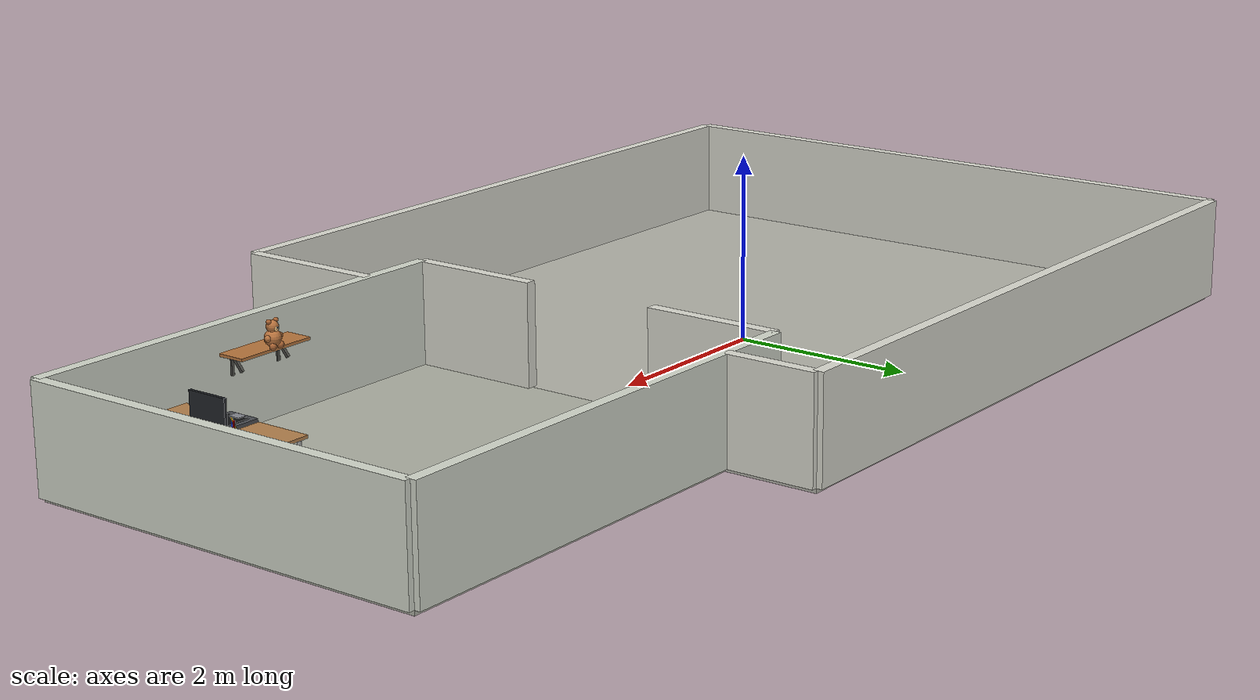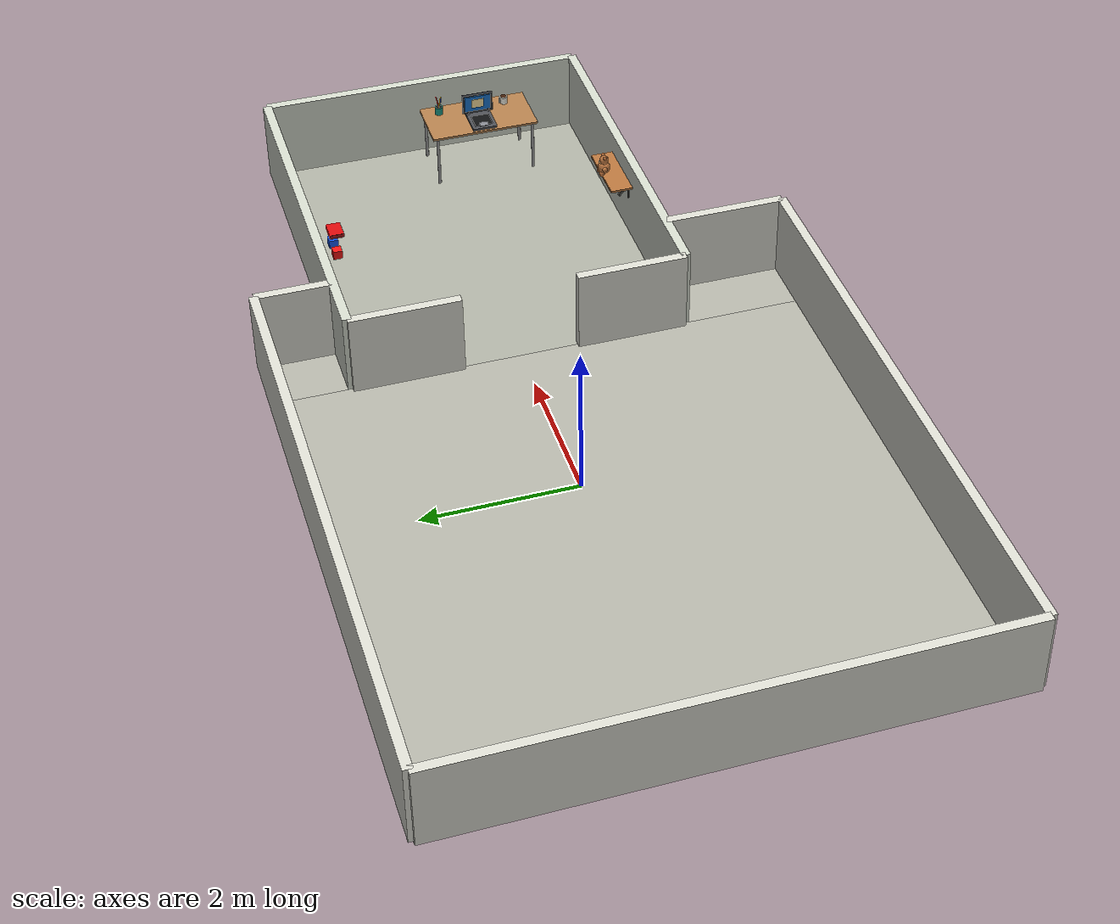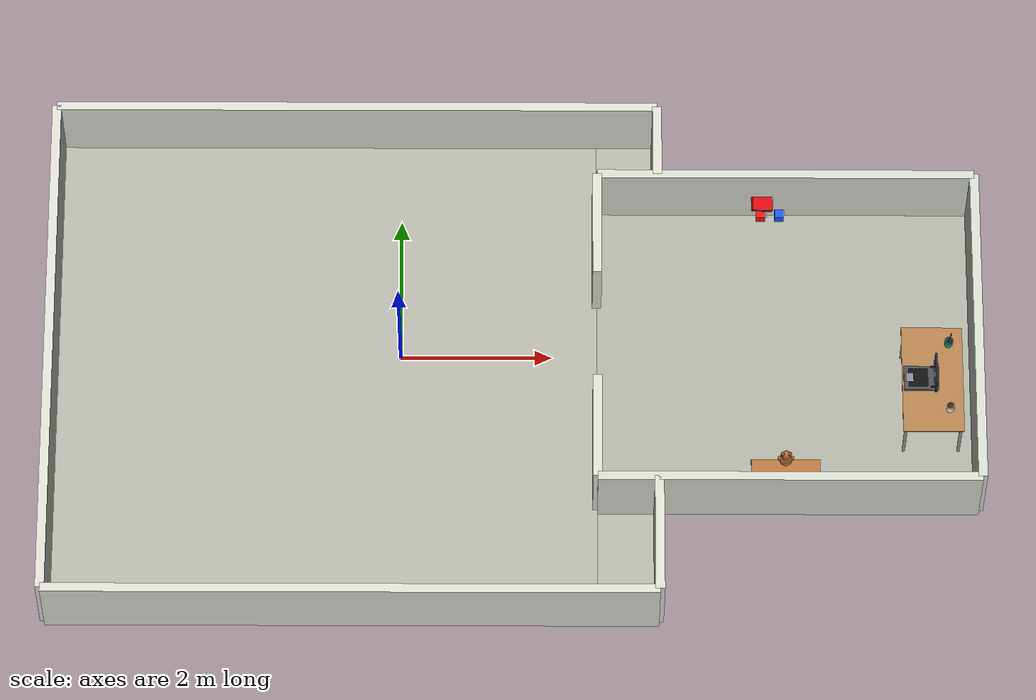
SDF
<sdf version="1.6">
 <world name="scene">
  <physics name="default_physics" type="ode">
   <max_step_size>0.001</max_step_size>
   <real_time_factor>1.0</real_time_factor>
   <real_time_update_rate>1000</real_time_update_rate>
  </physics>
  <scene>
   <ambient>0.72 0.72 0.70 1</ambient>
   <background>0.78 0.82 0.86 1</background>
   <shadows>true</shadows>
  </scene>
  <include><uri>model://sun</uri></include>
  <model name="scene_shell">
   <static>true</static>
   <link name="floor">
    <pose>-1.0 -0.3 -0.025 0 0 0</pose>
    <collision name="collision"><geometry><box><size>7.2 7.0 0.05</size></box></geometry></collision>
    <visual name="visual">
     <geometry><box><size>7.2 7.0 0.05</size></box></geometry>
     <material><ambient>0.70 0.70 0.66 1</ambient><diffuse>0.70 0.70 0.66 1</diffuse></material>
    </visual>
   </link>
   <link name="floor_north_east_strip">
    <pose>3.0 2.7 -0.025 0 0 0</pose>
    <collision name="collision"><geometry><box><size>0.8 1.0 0.05</size></box></geometry></collision>
    <visual name="visual">
     <geometry><box><size>0.8 1.0 0.05</size></box></geometry>
     <material><ambient>0.70 0.70 0.66 1</ambient><diffuse>0.70 0.70 0.66 1</diffuse></material>
    </visual>
   </link>
   <link name="floor_south_east_strip">
    <pose>3.0 -3.0 -0.025 0 0 0</pose>
    <collision name="collision"><geometry><box><size>0.8 1.6 0.05</size></box></geometry></collision>
    <visual name="visual">
     <geometry><box><size>0.8 1.6 0.05</size></box></geometry>
     <material><ambient>0.70 0.70 0.66 1</ambient><diffuse>0.70 0.70 0.66 1</diffuse></material>
    </visual>
   </link>
   <link name="side_room_floor">
    <pose>5.1 0 -0.025 0 0 0</pose>
    <collision name="collision"><geometry><box><size>5.0 4.4 0.05</size></box></geometry></collision>
    <visual name="visual">
     <geometry><box><size>5.0 4.4 0.05</size></box></geometry>
     <material><ambient>0.68 0.69 0.64 1</ambient><diffuse>0.68 0.69 0.64 1</diffuse></material>
    </visual>
   </link>
   <link name="north_wall">
    <pose>-0.6 3.2 0.549 0 0 0</pose>
    <collision name="collision"><geometry><box><size>8.0 0.12 1.098</size></box></geometry></collision>
    <visual name="visual">
     <geometry><box><size>8.0 0.12 1.098</size></box></geometry>
     <material><ambient>0.86 0.86 0.82 1</ambient><diffuse>0.86 0.86 0.82 1</diffuse></material>
    </visual>
   </link>
   <link name="south_wall">
    <pose>-0.6 -3.8 0.549 0 0 0</pose>
    <collision name="collision"><geometry><box><size>8.0 0.12 1.098</size></box></geometry></collision>
    <visual name="visual">
     <geometry><box><size>8.0 0.12 1.098</size></box></geometry>
     <material><ambient>0.86 0.86 0.82 1</ambient><diffuse>0.86 0.86 0.82 1</diffuse></material>
    </visual>
   </link>
   <link name="east_wall_south">
    <pose>2.6 -1.475 0.549 0 0 0</pose>
    <collision name="collision"><geometry><box><size>0.12 1.45 1.098</size></box></geometry></collision>
    <visual name="visual">
     <geometry><box><size>0.12 1.45 1.098</size></box></geometry>
     <material><ambient>0.86 0.86 0.82 1</ambient><diffuse>0.86 0.86 0.82 1</diffuse></material>
    </visual>
   </link>
   <link name="east_wall_south_outer">
    <pose>3.4 -3.0 0.549 0 0 0</pose>
    <collision name="collision"><geometry><box><size>0.12 1.6 1.098</size></box></geometry></collision>
    <visual name="visual">
     <geometry><box><size>0.12 1.6 1.098</size></box></geometry>
     <material><ambient>0.86 0.86 0.82 1</ambient><diffuse>0.86 0.86 0.82 1</diffuse></material>
    </visual>
   </link>
   <link name="east_wall_north">
    <pose>2.6 1.475 0.549 0 0 0</pose>
    <collision name="collision"><geometry><box><size>0.12 1.45 1.098</size></box></geometry></collision>
    <visual name="visual">
     <geometry><box><size>0.12 1.45 1.098</size></box></geometry>
     <material><ambient>0.86 0.86 0.82 1</ambient><diffuse>0.86 0.86 0.82 1</diffuse></material>
    </visual>
   </link>
   <link name="east_wall_north_outer">
    <pose>3.4 2.7 0.549 0 0 0</pose>
    <collision name="collision"><geometry><box><size>0.12 1.0 1.098</size></box></geometry></collision>
    <visual name="visual">
     <geometry><box><size>0.12 1.0 1.098</size></box></geometry>
     <material><ambient>0.86 0.86 0.82 1</ambient><diffuse>0.86 0.86 0.82 1</diffuse></material>
    </visual>
   </link>
   <link name="side_room_north_wall">
    <pose>5.1 2.2 0.549 0 0 0</pose>
    <collision name="collision"><geometry><box><size>5.0 0.12 1.098</size></box></geometry></collision>
    <visual name="visual">
     <geometry><box><size>5.0 0.12 1.098</size></box></geometry>
     <material><ambient>0.83 0.85 0.80 1</ambient><diffuse>0.83 0.85 0.80 1</diffuse></material>
    </visual>
   </link>
   <link name="side_room_south_wall">
    <pose>5.1 -2.2 0.549 0 0 0</pose>
    <collision name="collision"><geometry><box><size>5.0 0.12 1.098</size></box></geometry></collision>
    <visual name="visual">
     <geometry><box><size>5.0 0.12 1.098</size></box></geometry>
     <material><ambient>0.83 0.85 0.80 1</ambient><diffuse>0.83 0.85 0.80 1</diffuse></material>
    </visual>
   </link>
   <link name="side_room_east_wall">
    <pose>7.6 0 0.549 0 0 0</pose>
    <collision name="collision"><geometry><box><size>0.12 4.4 1.098</size></box></geometry></collision>
    <visual name="visual">
     <geometry><box><size>0.12 4.4 1.098</size></box></geometry>
     <material><ambient>0.83 0.85 0.80 1</ambient><diffuse>0.83 0.85 0.80 1</diffuse></material>
    </visual>
   </link>
   <link name="west_wall">
    <pose>-4.6 -0.3 0.549 0 0 0</pose>
    <collision name="collision"><geometry><box><size>0.12 7.0 1.098</size></box></geometry></collision>
    <visual name="visual">
     <geometry><box><size>0.12 7.0 1.098</size></box></geometry>
     <material><ambient>0.86 0.86 0.82 1</ambient><diffuse>0.86 0.86 0.82 1</diffuse></material>
    </visual>
   </link>
  </model>
  <model name="south_wall_shelf_in_side_room">
   <static>true</static>
   <pose>5.05 -2.02 0 0 0 0</pose>
   <link name="link">
    <collision name="shelf_board_collision">
     <pose>0 0 0.800 0 0 0</pose>
     <geometry><box><size>0.90 0.36 0.030</size></box></geometry>
    </collision>
    <visual name="shelf_board">
     <pose>0 0 0.800 0 0 0</pose>
     <geometry><box><size>0.90 0.36 0.030</size></box></geometry>
     <material><ambient>0.56 0.34 0.16 1</ambient><diffuse>0.72 0.46 0.24 1</diffuse></material>
    </visual>
    <collision name="back_lip_collision">
     <pose>0 -0.170 0.845 0 0 0</pose>
     <geometry><box><size>0.90 0.025 0.080</size></box></geometry>
    </collision>
    <visual name="back_lip">
     <pose>0 -0.170 0.845 0 0 0</pose>
     <geometry><box><size>0.90 0.025 0.080</size></box></geometry>
     <material><ambient>0.48 0.28 0.12 1</ambient><diffuse>0.64 0.38 0.18 1</diffuse></material>
    </visual>
    <visual name="left_bracket">
     <pose>-0.30 -0.120 0.680 0 0 0</pose>
     <geometry><box><size>0.035 0.035 0.240</size></box></geometry>
     <material><ambient>0.18 0.18 0.17 1</ambient><diffuse>0.30 0.30 0.28 1</diffuse></material>
    </visual>
    <visual name="right_bracket">
     <pose>0.30 -0.120 0.680 0 0 0</pose>
     <geometry><box><size>0.035 0.035 0.240</size></box></geometry>
     <material><ambient>0.18 0.18 0.17 1</ambient><diffuse>0.30 0.30 0.28 1</diffuse></material>
    </visual>
    <visual name="left_diagonal_bracket">
     <pose>-0.30 -0.060 0.720 0.70 0 0</pose>
     <geometry><box><size>0.030 0.030 0.260</size></box></geometry>
     <material><ambient>0.18 0.18 0.17 1</ambient><diffuse>0.30 0.30 0.28 1</diffuse></material>
    </visual>
    <visual name="right_diagonal_bracket">
     <pose>0.30 -0.060 0.720 0.70 0 0</pose>
     <geometry><box><size>0.030 0.030 0.260</size></box></geometry>
     <material><ambient>0.18 0.18 0.17 1</ambient><diffuse>0.30 0.30 0.28 1</diffuse></material>
    </visual>
   </link>
  </model>
  <model name="right_table_after_turn">
   <static>true</static>
   <pose>7.00 -0.65 0 0 0 0</pose>
   <link name="link">
    <collision name="surface">
     <pose>0 0 0.745 0 0 0</pose>
     <geometry><box><size>0.8 1.5 0.03</size></box></geometry>
     <surface><friction><ode><mu>0.6</mu><mu2>0.6</mu2></ode></friction></surface>
    </collision>
    <visual name="surface">
     <pose>0 0 0.745 0 0 0</pose>
     <geometry><box><size>0.8 1.5 0.03</size></box></geometry>
     <material>
      <diffuse>1.0 1.0 1.0 1</diffuse>
      <script><uri>file://media/materials/scripts/gazebo.material</uri><name>Gazebo/Wood</name></script>
      <pbr><metal><albedo_map>model://Table/Table_Diffuse.jpg</albedo_map></metal></pbr>
     </material>
    </visual>
    <collision name="front_left_leg">
     <pose>0.36 0.68 0.365 0 0 0</pose>
     <geometry><cylinder><radius>0.02</radius><length>0.73</length></cylinder></geometry>
    </collision>
    <visual name="front_left_leg">
     <pose>0.36 0.68 0.365 0 0 0</pose>
     <geometry><cylinder><radius>0.02</radius><length>0.73</length></cylinder></geometry>
     <material>
      <diffuse>0.5 0.5 0.5 1</diffuse>
      <script><uri>file://media/materials/scripts/gazebo.material</uri><name>Gazebo/Grey</name></script>
     </material>
    </visual>
    <collision name="front_right_leg">
     <pose>0.36 -0.68 0.365 0 0 0</pose>
     <geometry><cylinder><radius>0.02</radius><length>0.73</length></cylinder></geometry>
    </collision>
    <visual name="front_right_leg">
     <pose>0.36 -0.68 0.365 0 0 0</pose>
     <geometry><cylinder><radius>0.02</radius><length>0.73</length></cylinder></geometry>
     <material>
      <diffuse>0.5 0.5 0.5 1</diffuse>
      <script><uri>file://media/materials/scripts/gazebo.material</uri><name>Gazebo/Grey</name></script>
     </material>
    </visual>
    <collision name="back_right_leg">
     <pose>-0.36 -0.68 0.365 0 0 0</pose>
     <geometry><cylinder><radius>0.02</radius><length>0.73</length></cylinder></geometry>
    </collision>
    <visual name="back_right_leg">
     <pose>-0.36 -0.68 0.365 0 0 0</pose>
     <geometry><cylinder><radius>0.02</radius><length>0.73</length></cylinder></geometry>
     <material>
      <diffuse>0.5 0.5 0.5 1</diffuse>
      <script><uri>file://media/materials/scripts/gazebo.material</uri><name>Gazebo/Grey</name></script>
     </material>
    </visual>
    <collision name="back_left_leg">
     <pose>-0.36 0.68 0.365 0 0 0</pose>
     <geometry><cylinder><radius>0.02</radius><length>0.73</length></cylinder></geometry>
    </collision>
    <visual name="back_left_leg">
     <pose>-0.36 0.68 0.365 0 0 0</pose>
     <geometry><cylinder><radius>0.02</radius><length>0.73</length></cylinder></geometry>
     <material>
      <diffuse>0.5 0.5 0.5 1</diffuse>
      <script><uri>file://media/materials/scripts/gazebo.material</uri><name>Gazebo/Grey</name></script>
     </material>
    </visual>
   </link>
  </model>
  <model name="clear_red_book_on_right_table">
   <static>false</static>
   <pose>4.80 1.88 0.815 0 0 0</pose>
   <link name="link">
    <collision name="collision">
     <pose>0 0 0.026 0 0 0</pose>
     <geometry><box><size>0.26 0.18 0.052</size></box></geometry>
    </collision>
    <visual name="page_block">
     <pose>0.012 0.005 0.026 0 0 0</pose>
     <geometry><box><size>0.215 0.137 0.040</size></box></geometry>
     <material><ambient>0.86 0.83 0.70 1</ambient><diffuse>0.98 0.94 0.80 1</diffuse></material>
    </visual>
    <visual name="hard_cover_bottom">
     <pose>0 0 0.006 0 0 0</pose>
     <geometry><box><size>0.26 0.189 0.012</size></box></geometry>
     <material><ambient>0.38 0.02 0.03 1</ambient><diffuse>0.58 0.03 0.04 1</diffuse></material>
    </visual>
    <visual name="hard_cover_top">
     <pose>0 0 0.053 0 0 0</pose>
     <geometry><box><size>0.26 0.189 0.012</size></box></geometry>
     <material><ambient>0.58 0.03 0.04 1</ambient><diffuse>0.86 0.04 0.05 1</diffuse></material>
    </visual>
    <visual name="rounded_spine">
     <pose>-0.127 0 0.029 1.5708 0 0</pose>
     <geometry><cylinder><radius>0.025</radius><length>0.189</length></cylinder></geometry>
     <material><ambient>0.23 0.01 0.02 1</ambient><diffuse>0.42 0.02 0.03 1</diffuse></material>
    </visual>
    <visual name="front_page_edges">
     <pose>0.013 -0.080 0.031 0 0 0</pose>
     <geometry><box><size>0.208 0.009 0.030</size></box></geometry>
     <material><ambient>0.78 0.75 0.62 1</ambient><diffuse>0.94 0.90 0.74 1</diffuse></material>
    </visual>
    <visual name="side_page_edges">
     <pose>0.128 0.005 0.031 0 0 0</pose>
     <geometry><box><size>0.009 0.137 0.030</size></box></geometry>
     <material><ambient>0.78 0.75 0.62 1</ambient><diffuse>0.94 0.90 0.74 1</diffuse></material>
    </visual>
   </link>
  </model>
  <model name="red_toy_cube_on_bookshelf_low_shelf">
   <static>true</static>
   <pose>4.78 1.88 0.445 0 0 0</pose>
   <link name="link">
    <collision name="collision">
     <pose>0 0 0.06 0 0 0</pose>
     <geometry><box><size>0.12 0.12 0.12</size></box></geometry>
    </collision>
    <visual name="cube">
     <pose>0 0 0.06 0 0 0</pose>
     <geometry><box><size>0.12 0.12 0.12</size></box></geometry>
     <material><ambient>0.70 0.04 0.04 1</ambient><diffuse>0.95 0.08 0.07 1</diffuse></material>
    </visual>
    <visual name="front_letter_vertical">
     <pose>0.061 -0.026 0.073 0 1.5708 0</pose>
     <geometry><box><size>0.005 0.010 0.060</size></box></geometry>
     <material><ambient>0.95 0.95 0.88 1</ambient><diffuse>1.00 1.00 0.92 1</diffuse></material>
    </visual>
    <visual name="front_letter_bar">
     <pose>0.062 0.004 0.100 0 1.5708 0</pose>
     <geometry><box><size>0.005 0.070 0.010</size></box></geometry>
     <material><ambient>0.95 0.95 0.88 1</ambient><diffuse>1.00 1.00 0.92 1</diffuse></material>
    </visual>
   </link>
  </model>
  <model name="blue_toy_cube_on_bookshelf_low_shelf">
   <static>true</static>
   <pose>5.03 1.88 0.445 0 0 0</pose>
   <link name="link">
    <collision name="collision">
     <pose>0 0 0.06 0 0 0</pose>
     <geometry><box><size>0.12 0.12 0.12</size></box></geometry>
    </collision>
    <visual name="cube">
     <pose>0 0 0.06 0 0 0</pose>
     <geometry><box><size>0.12 0.12 0.12</size></box></geometry>
     <material><ambient>0.04 0.22 0.70 1</ambient><diffuse>0.08 0.35 0.95 1</diffuse></material>
    </visual>
    <visual name="front_letter_vertical">
     <pose>0.061 0.000 0.073 0 1.5708 0</pose>
     <geometry><box><size>0.005 0.010 0.060</size></box></geometry>
     <material><ambient>0.95 0.95 0.88 1</ambient><diffuse>1.00 1.00 0.92 1</diffuse></material>
    </visual>
    <visual name="front_letter_top">
     <pose>0.062 0.020 0.099 0 1.5708 0</pose>
     <geometry><box><size>0.005 0.050 0.010</size></box></geometry>
     <material><ambient>0.95 0.95 0.88 1</ambient><diffuse>1.00 1.00 0.92 1</diffuse></material>
    </visual>
    <visual name="front_letter_bottom">
     <pose>0.062 0.020 0.047 0 1.5708 0</pose>
     <geometry><box><size>0.005 0.050 0.010</size></box></geometry>
     <material><ambient>0.95 0.95 0.88 1</ambient><diffuse>1.00 1.00 0.92 1</diffuse></material>
    </visual>
   </link>
  </model>
  <model name="laptop_computer_on_right_table">
   <static>false</static>
   <pose>6.85 -0.65 0.765 0 0 0</pose>
   <link name="link">
    <collision name="collision">
     <pose>0 0 0.030 0 0 0</pose>
     <geometry><box><size>0.46 0.34 0.060</size></box></geometry>
    </collision>
    <visual name="base">
     <pose>0 0 0.018 0 0 0</pose>
     <geometry><box><size>0.46 0.34 0.035</size></box></geometry>
     <material><ambient>0.18 0.19 0.20 1</ambient><diffuse>0.30 0.31 0.33 1</diffuse></material>
    </visual>
    <visual name="keyboard_deck">
     <pose>-0.040 0 0.041 0 0 0</pose>
     <geometry><box><size>0.250 0.250 0.008</size></box></geometry>
     <material><ambient>0.04 0.045 0.050 1</ambient><diffuse>0.06 0.065 0.070 1</diffuse></material>
    </visual>
    <visual name="trackpad">
     <pose>-0.150 0 0.047 0 0 0</pose>
     <geometry><box><size>0.095 0.120 0.006</size></box></geometry>
     <material><ambient>0.40 0.41 0.43 1</ambient><diffuse>0.52 0.53 0.56 1</diffuse></material>
    </visual>
    <visual name="screen_back">
     <pose>0.185 0 0.190 0 0 0</pose>
     <geometry><box><size>0.030 0.430 0.290</size></box></geometry>
     <material><ambient>0.09 0.10 0.11 1</ambient><diffuse>0.13 0.14 0.16 1</diffuse></material>
    </visual>
    <visual name="screen_display">
     <pose>0.168 0 0.190 0 0 0</pose>
     <geometry><box><size>0.006 0.370 0.230</size></box></geometry>
     <material>
      <ambient>0.08 0.30 0.55 1</ambient>
      <diffuse>0.10 0.46 0.82 1</diffuse>
      <emissive>0.02 0.08 0.16 1</emissive>
     </material>
    </visual>
    <visual name="emotion_photo_panel">
     <pose>0.164 0 0.192 0 0 0</pose>
     <geometry><box><size>0.004 0.170 0.130</size></box></geometry>
     <material>
      <ambient>0.92 0.82 0.58 1</ambient>
      <diffuse>1.00 0.90 0.64 1</diffuse>
      <emissive>0.04 0.03 0.02 1</emissive>
     </material>
    </visual>
    <visual name="webcam">
     <pose>0.162 0 0.320 0 1.5708 0</pose>
     <geometry><cylinder><radius>0.010</radius><length>0.006</length></cylinder></geometry>
     <material><ambient>0.01 0.01 0.012 1</ambient><diffuse>0.00 0.00 0.00 1</diffuse></material>
    </visual>
    <visual name="left_hinge">
     <pose>0.155 0.145 0.065 0 1.5708 0</pose>
     <geometry><cylinder><radius>0.012</radius><length>0.070</length></cylinder></geometry>
     <material><ambient>0.12 0.12 0.13 1</ambient><diffuse>0.18 0.18 0.19 1</diffuse></material>
    </visual>
    <visual name="right_hinge">
     <pose>0.155 -0.145 0.065 0 1.5708 0</pose>
     <geometry><cylinder><radius>0.012</radius><length>0.070</length></cylinder></geometry>
     <material><ambient>0.12 0.12 0.13 1</ambient><diffuse>0.18 0.18 0.19 1</diffuse></material>
    </visual>
   </link>
  </model>
  <model name="pen_holder_on_computer_table">
   <static>true</static>
   <pose>7.22 -0.14 0.760 0 0 0</pose>
   <link name="link">
    <collision name="cup_collision">
     <pose>0 0 0.055 0 0 0</pose>
     <geometry><cylinder><radius>0.055</radius><length>0.110</length></cylinder></geometry>
    </collision>
    <visual name="cup">
     <pose>0 0 0.055 0 0 0</pose>
     <geometry><cylinder><radius>0.055</radius><length>0.110</length></cylinder></geometry>
     <material><ambient>0.08 0.42 0.36 1</ambient><diffuse>0.10 0.62 0.54 1</diffuse></material>
    </visual>
    <visual name="dark_opening">
     <pose>0 0 0.112 0 0 0</pose>
     <geometry><cylinder><radius>0.046</radius><length>0.004</length></cylinder></geometry>
     <material><ambient>0.02 0.025 0.025 1</ambient><diffuse>0.03 0.035 0.035 1</diffuse></material>
    </visual>
    <visual name="yellow_pencil">
     <pose>-0.020 -0.010 0.180 0.25 0.18 0</pose>
     <geometry><cylinder><radius>0.007</radius><length>0.180</length></cylinder></geometry>
     <material><ambient>0.86 0.62 0.05 1</ambient><diffuse>1.00 0.78 0.08 1</diffuse></material>
    </visual>
    <visual name="red_pencil">
     <pose>0.016 0.012 0.175 -0.20 0.12 0</pose>
     <geometry><cylinder><radius>0.007</radius><length>0.170</length></cylinder></geometry>
     <material><ambient>0.65 0.04 0.05 1</ambient><diffuse>0.90 0.05 0.06 1</diffuse></material>
    </visual>
    <visual name="blue_pencil">
     <pose>0.004 -0.024 0.172 0.10 -0.20 0</pose>
     <geometry><cylinder><radius>0.007</radius><length>0.165</length></cylinder></geometry>
     <material><ambient>0.05 0.16 0.58 1</ambient><diffuse>0.08 0.25 0.88 1</diffuse></material>
    </visual>
   </link>
  </model>
  <model name="white_mug_on_computer_table">
   <static>true</static>
   <pose>7.22 -1.08 0.760 0 0 0</pose>
   <link name="link">
    <collision name="cup_collision">
     <pose>0 0 0.050 0 0 0</pose>
     <geometry><cylinder><radius>0.052</radius><length>0.100</length></cylinder></geometry>
    </collision>
    <visual name="cup">
     <pose>0 0 0.050 0 0 0</pose>
     <geometry><cylinder><radius>0.052</radius><length>0.100</length></cylinder></geometry>
     <material><ambient>0.88 0.87 0.82 1</ambient><diffuse>0.98 0.97 0.92 1</diffuse></material>
    </visual>
    <visual name="coffee_top">
     <pose>0 0 0.103 0 0 0</pose>
     <geometry><cylinder><radius>0.044</radius><length>0.004</length></cylinder></geometry>
     <material><ambient>0.16 0.08 0.03 1</ambient><diffuse>0.26 0.13 0.05 1</diffuse></material>
    </visual>
    <visual name="handle_outer">
     <pose>0 0.060 0.055 0 0 0</pose>
     <geometry><box><size>0.016 0.012 0.076</size></box></geometry>
     <material><ambient>0.88 0.87 0.82 1</ambient><diffuse>0.98 0.97 0.92 1</diffuse></material>
    </visual>
    <visual name="handle_top">
     <pose>0 0.054 0.091 0 0 0</pose>
     <geometry><box><size>0.016 0.028 0.012</size></box></geometry>
     <material><ambient>0.88 0.87 0.82 1</ambient><diffuse>0.98 0.97 0.92 1</diffuse></material>
    </visual>
    <visual name="handle_bottom">
     <pose>0 0.054 0.019 0 0 0</pose>
     <geometry><box><size>0.016 0.028 0.012</size></box></geometry>
     <material><ambient>0.88 0.87 0.82 1</ambient><diffuse>0.98 0.97 0.92 1</diffuse></material>
    </visual>
   </link>
  </model>
  <model name="teddy_bear_on_right_table">
   <static>false</static>
   <pose>5.05 -1.88 0.815 0 0 1.5708</pose>
   <link name="link">
    <collision name="collision">
     <pose>0 0 0.114 0 0 0</pose>
     <geometry><sphere><radius>0.117</radius></sphere></geometry>
    </collision>
    <visual name="body">
     <pose>0 0 0.091 0 0 0</pose>
     <geometry><sphere><radius>0.085</radius></sphere></geometry>
     <material><ambient>0.55 0.33 0.17 1</ambient><diffuse>0.72 0.45 0.24 1</diffuse></material>
    </visual>
    <visual name="belly">
     <pose>-0.008 -0.013 0.081 0 0 0</pose>
     <geometry><sphere><radius>0.049</radius></sphere></geometry>
     <material><ambient>0.82 0.62 0.38 1</ambient><diffuse>0.96 0.76 0.48 1</diffuse></material>
    </visual>
    <visual name="head">
     <pose>0 0 0.205 0 0 0</pose>
     <geometry><sphere><radius>0.062</radius></sphere></geometry>
     <material><ambient>0.55 0.33 0.17 1</ambient><diffuse>0.72 0.45 0.24 1</diffuse></material>
    </visual>
    <visual name="left_ear">
     <pose>0 0.046 0.257 0 0 0</pose>
     <geometry><sphere><radius>0.026</radius></sphere></geometry>
     <material><ambient>0.50 0.29 0.14 1</ambient><diffuse>0.66 0.39 0.20 1</diffuse></material>
    </visual>
    <visual name="right_ear">
     <pose>0 -0.046 0.257 0 0 0</pose>
     <geometry><sphere><radius>0.026</radius></sphere></geometry>
     <material><ambient>0.50 0.29 0.14 1</ambient><diffuse>0.66 0.39 0.20 1</diffuse></material>
    </visual>
    <visual name="muzzle">
     <pose>0.046 0 0.190 0 0 0</pose>
     <geometry><sphere><radius>0.027</radius></sphere></geometry>
     <material><ambient>0.86 0.66 0.42 1</ambient><diffuse>1.00 0.80 0.52 1</diffuse></material>
    </visual>
    <visual name="nose">
     <pose>0.068 0 0.198 0 1.5708 0</pose>
     <geometry><cylinder><radius>0.012</radius><length>0.007</length></cylinder></geometry>
     <material><ambient>0.04 0.03 0.025 1</ambient><diffuse>0.02 0.02 0.018 1</diffuse></material>
    </visual>
    <visual name="left_arm">
     <pose>0.010 0.075 0.101 0.35 0 0</pose>
     <geometry><sphere><radius>0.034</radius></sphere></geometry>
     <material><ambient>0.55 0.33 0.17 1</ambient><diffuse>0.72 0.45 0.24 1</diffuse></material>
    </visual>
    <visual name="right_arm">
     <pose>0.010 -0.075 0.101 -0.35 0 0</pose>
     <geometry><sphere><radius>0.034</radius></sphere></geometry>
     <material><ambient>0.55 0.33 0.17 1</ambient><diffuse>0.72 0.45 0.24 1</diffuse></material>
    </visual>
    <visual name="left_foot">
     <pose>0.046 0.049 0.023 0 0 0</pose>
     <geometry><sphere><radius>0.036</radius></sphere></geometry>
     <material><ambient>0.50 0.29 0.14 1</ambient><diffuse>0.66 0.39 0.20 1</diffuse></material>
    </visual>
    <visual name="right_foot">
     <pose>0.046 -0.049 0.023 0 0 0</pose>
     <geometry><sphere><radius>0.036</radius></sphere></geometry>
     <material><ambient>0.50 0.29 0.14 1</ambient><diffuse>0.66 0.39 0.20 1</diffuse></material>
    </visual>
   </link>
  </model>
 </world>
</sdf>
